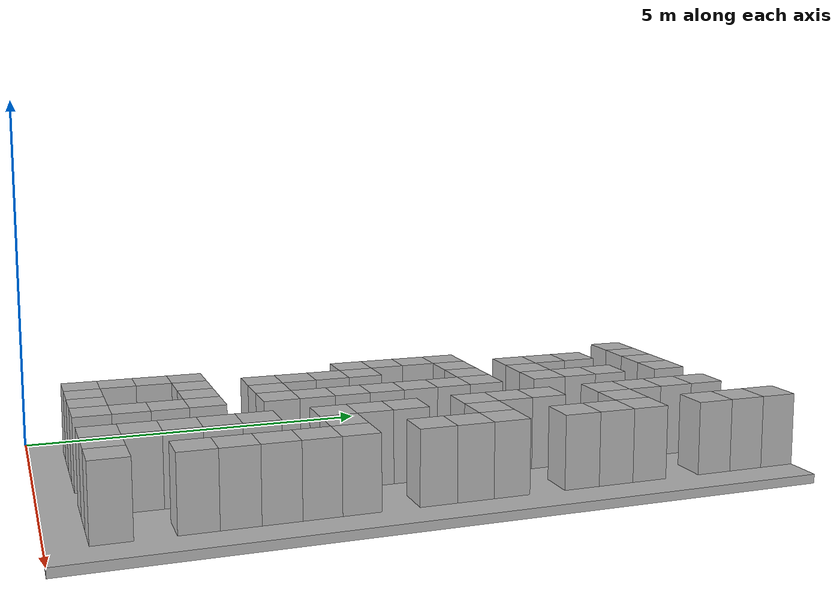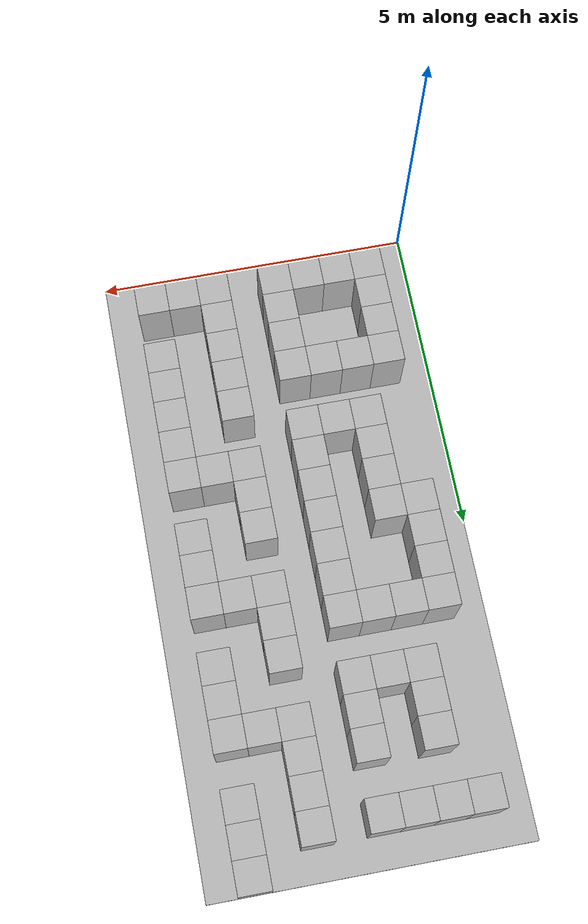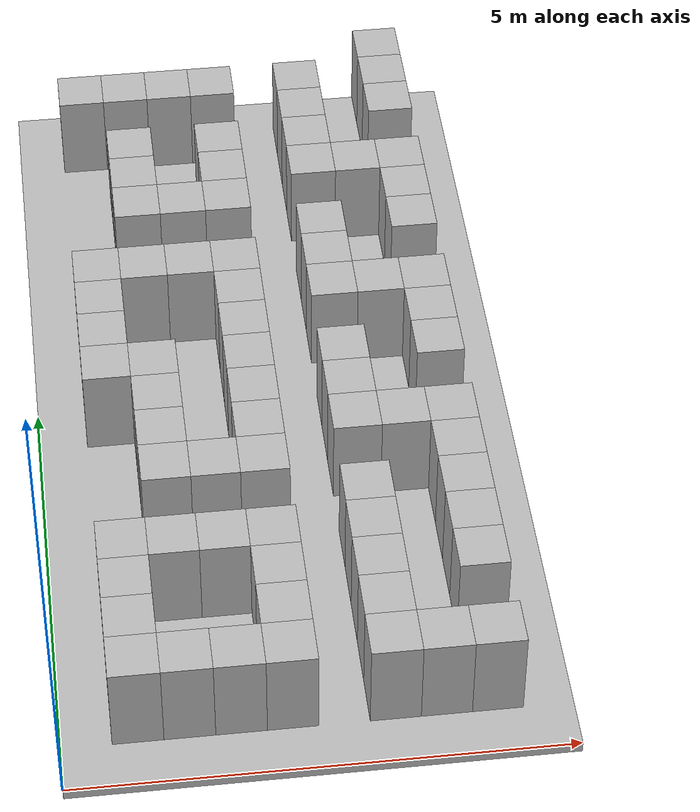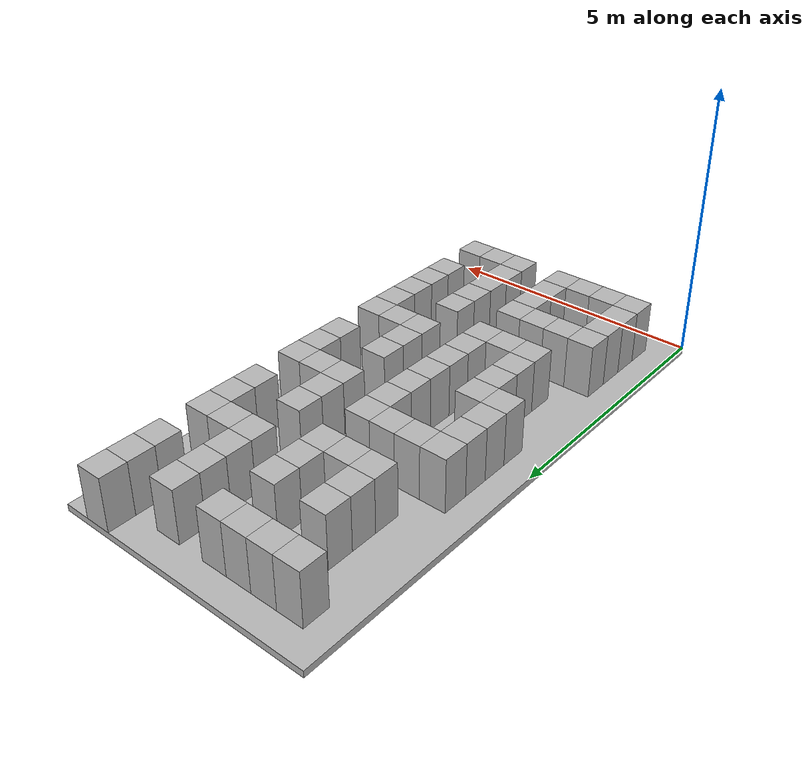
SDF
<sdf version="1.5">
  <model name="map">
    <static>1</static>
    <link name="map">
      <collision name="floor">
        <pose>2.5 5.0 -0.0625 0 0 0</pose>
        <geometry>
          <box>
            <size>5.0 10.0 0.125</size>
          </box>
        </geometry>
      </collision>
      <visual name="floor">
        <pose>2.5 5.0 -0.0625 0 0 0</pose>
        <geometry>
          <box>
            <size>5.0 10.0 0.125</size>
          </box>
        </geometry>
      </visual>
      <collision name="box_1_1">
        <pose>0.75 0.75 0.5 0 0 0</pose>
        <geometry>
          <box>
            <size>0.5 0.5 1.0</size>
          </box>
        </geometry>
      </collision>
      <visual name="box_1_1">
        <pose>0.75 0.75 0.5 0 0 0</pose>
        <geometry>
          <box>
            <size>0.5 0.5 1.0</size>
          </box>
        </geometry>
      </visual>
      <collision name="box_1_2">
        <pose>0.75 1.25 0.5 0 0 0</pose>
        <geometry>
          <box>
            <size>0.5 0.5 1.0</size>
          </box>
        </geometry>
      </collision>
      <visual name="box_1_2">
        <pose>0.75 1.25 0.5 0 0 0</pose>
        <geometry>
          <box>
            <size>0.5 0.5 1.0</size>
          </box>
        </geometry>
      </visual>
      <collision name="box_1_3">
        <pose>0.75 1.75 0.5 0 0 0</pose>
        <geometry>
          <box>
            <size>0.5 0.5 1.0</size>
          </box>
        </geometry>
      </collision>
      <visual name="box_1_3">
        <pose>0.75 1.75 0.5 0 0 0</pose>
        <geometry>
          <box>
            <size>0.5 0.5 1.0</size>
          </box>
        </geometry>
      </visual>
      <collision name="box_1_4">
        <pose>0.75 2.25 0.5 0 0 0</pose>
        <geometry>
          <box>
            <size>0.5 0.5 1.0</size>
          </box>
        </geometry>
      </collision>
      <visual name="box_1_4">
        <pose>0.75 2.25 0.5 0 0 0</pose>
        <geometry>
          <box>
            <size>0.5 0.5 1.0</size>
          </box>
        </geometry>
      </visual>
      <collision name="box_1_9">
        <pose>0.75 4.75 0.5 0 0 0</pose>
        <geometry>
          <box>
            <size>0.5 0.5 1.0</size>
          </box>
        </geometry>
      </collision>
      <visual name="box_1_9">
        <pose>0.75 4.75 0.5 0 0 0</pose>
        <geometry>
          <box>
            <size>0.5 0.5 1.0</size>
          </box>
        </geometry>
      </visual>
      <collision name="box_1_10">
        <pose>0.75 5.25 0.5 0 0 0</pose>
        <geometry>
          <box>
            <size>0.5 0.5 1.0</size>
          </box>
        </geometry>
      </collision>
      <visual name="box_1_10">
        <pose>0.75 5.25 0.5 0 0 0</pose>
        <geometry>
          <box>
            <size>0.5 0.5 1.0</size>
          </box>
        </geometry>
      </visual>
      <collision name="box_1_11">
        <pose>0.75 5.75 0.5 0 0 0</pose>
        <geometry>
          <box>
            <size>0.5 0.5 1.0</size>
          </box>
        </geometry>
      </collision>
      <visual name="box_1_11">
        <pose>0.75 5.75 0.5 0 0 0</pose>
        <geometry>
          <box>
            <size>0.5 0.5 1.0</size>
          </box>
        </geometry>
      </visual>
      <collision name="box_1_12">
        <pose>0.75 6.25 0.5 0 0 0</pose>
        <geometry>
          <box>
            <size>0.5 0.5 1.0</size>
          </box>
        </geometry>
      </collision>
      <visual name="box_1_12">
        <pose>0.75 6.25 0.5 0 0 0</pose>
        <geometry>
          <box>
            <size>0.5 0.5 1.0</size>
          </box>
        </geometry>
      </visual>
      <collision name="box_1_18">
        <pose>0.75 9.25 0.5 0 0 0</pose>
        <geometry>
          <box>
            <size>0.5 0.5 1.0</size>
          </box>
        </geometry>
      </collision>
      <visual name="box_1_18">
        <pose>0.75 9.25 0.5 0 0 0</pose>
        <geometry>
          <box>
            <size>0.5 0.5 1.0</size>
          </box>
        </geometry>
      </visual>
      <collision name="box_2_1">
        <pose>1.25 0.75 0.5 0 0 0</pose>
        <geometry>
          <box>
            <size>0.5 0.5 1.0</size>
          </box>
        </geometry>
      </collision>
      <visual name="box_2_1">
        <pose>1.25 0.75 0.5 0 0 0</pose>
        <geometry>
          <box>
            <size>0.5 0.5 1.0</size>
          </box>
        </geometry>
      </visual>
      <collision name="box_2_4">
        <pose>1.25 2.25 0.5 0 0 0</pose>
        <geometry>
          <box>
            <size>0.5 0.5 1.0</size>
          </box>
        </geometry>
      </collision>
      <visual name="box_2_4">
        <pose>1.25 2.25 0.5 0 0 0</pose>
        <geometry>
          <box>
            <size>0.5 0.5 1.0</size>
          </box>
        </geometry>
      </visual>
      <collision name="box_2_6">
        <pose>1.25 3.25 0.5 0 0 0</pose>
        <geometry>
          <box>
            <size>0.5 0.5 1.0</size>
          </box>
        </geometry>
      </collision>
      <visual name="box_2_6">
        <pose>1.25 3.25 0.5 0 0 0</pose>
        <geometry>
          <box>
            <size>0.5 0.5 1.0</size>
          </box>
        </geometry>
      </visual>
      <collision name="box_2_7">
        <pose>1.25 3.75 0.5 0 0 0</pose>
        <geometry>
          <box>
            <size>0.5 0.5 1.0</size>
          </box>
        </geometry>
      </collision>
      <visual name="box_2_7">
        <pose>1.25 3.75 0.5 0 0 0</pose>
        <geometry>
          <box>
            <size>0.5 0.5 1.0</size>
          </box>
        </geometry>
      </visual>
      <collision name="box_2_8">
        <pose>1.25 4.25 0.5 0 0 0</pose>
        <geometry>
          <box>
            <size>0.5 0.5 1.0</size>
          </box>
        </geometry>
      </collision>
      <visual name="box_2_8">
        <pose>1.25 4.25 0.5 0 0 0</pose>
        <geometry>
          <box>
            <size>0.5 0.5 1.0</size>
          </box>
        </geometry>
      </visual>
      <collision name="box_2_9">
        <pose>1.25 4.75 0.5 0 0 0</pose>
        <geometry>
          <box>
            <size>0.5 0.5 1.0</size>
          </box>
        </geometry>
      </collision>
      <visual name="box_2_9">
        <pose>1.25 4.75 0.5 0 0 0</pose>
        <geometry>
          <box>
            <size>0.5 0.5 1.0</size>
          </box>
        </geometry>
      </visual>
      <collision name="box_2_12">
        <pose>1.25 6.25 0.5 0 0 0</pose>
        <geometry>
          <box>
            <size>0.5 0.5 1.0</size>
          </box>
        </geometry>
      </collision>
      <visual name="box_2_12">
        <pose>1.25 6.25 0.5 0 0 0</pose>
        <geometry>
          <box>
            <size>0.5 0.5 1.0</size>
          </box>
        </geometry>
      </visual>
      <collision name="box_2_14">
        <pose>1.25 7.25 0.5 0 0 0</pose>
        <geometry>
          <box>
            <size>0.5 0.5 1.0</size>
          </box>
        </geometry>
      </collision>
      <visual name="box_2_14">
        <pose>1.25 7.25 0.5 0 0 0</pose>
        <geometry>
          <box>
            <size>0.5 0.5 1.0</size>
          </box>
        </geometry>
      </visual>
      <collision name="box_2_15">
        <pose>1.25 7.75 0.5 0 0 0</pose>
        <geometry>
          <box>
            <size>0.5 0.5 1.0</size>
          </box>
        </geometry>
      </collision>
      <visual name="box_2_15">
        <pose>1.25 7.75 0.5 0 0 0</pose>
        <geometry>
          <box>
            <size>0.5 0.5 1.0</size>
          </box>
        </geometry>
      </visual>
      <collision name="box_2_16">
        <pose>1.25 8.25 0.5 0 0 0</pose>
        <geometry>
          <box>
            <size>0.5 0.5 1.0</size>
          </box>
        </geometry>
      </collision>
      <visual name="box_2_16">
        <pose>1.25 8.25 0.5 0 0 0</pose>
        <geometry>
          <box>
            <size>0.5 0.5 1.0</size>
          </box>
        </geometry>
      </visual>
      <collision name="box_2_18">
        <pose>1.25 9.25 0.5 0 0 0</pose>
        <geometry>
          <box>
            <size>0.5 0.5 1.0</size>
          </box>
        </geometry>
      </collision>
      <visual name="box_2_18">
        <pose>1.25 9.25 0.5 0 0 0</pose>
        <geometry>
          <box>
            <size>0.5 0.5 1.0</size>
          </box>
        </geometry>
      </visual>
      <collision name="box_3_1">
        <pose>1.75 0.75 0.5 0 0 0</pose>
        <geometry>
          <box>
            <size>0.5 0.5 1.0</size>
          </box>
        </geometry>
      </collision>
      <visual name="box_3_1">
        <pose>1.75 0.75 0.5 0 0 0</pose>
        <geometry>
          <box>
            <size>0.5 0.5 1.0</size>
          </box>
        </geometry>
      </visual>
      <collision name="box_3_4">
        <pose>1.75 2.25 0.5 0 0 0</pose>
        <geometry>
          <box>
            <size>0.5 0.5 1.0</size>
          </box>
        </geometry>
      </collision>
      <visual name="box_3_4">
        <pose>1.75 2.25 0.5 0 0 0</pose>
        <geometry>
          <box>
            <size>0.5 0.5 1.0</size>
          </box>
        </geometry>
      </visual>
      <collision name="box_3_6">
        <pose>1.75 3.25 0.5 0 0 0</pose>
        <geometry>
          <box>
            <size>0.5 0.5 1.0</size>
          </box>
        </geometry>
      </collision>
      <visual name="box_3_6">
        <pose>1.75 3.25 0.5 0 0 0</pose>
        <geometry>
          <box>
            <size>0.5 0.5 1.0</size>
          </box>
        </geometry>
      </visual>
      <collision name="box_3_12">
        <pose>1.75 6.25 0.5 0 0 0</pose>
        <geometry>
          <box>
            <size>0.5 0.5 1.0</size>
          </box>
        </geometry>
      </collision>
      <visual name="box_3_12">
        <pose>1.75 6.25 0.5 0 0 0</pose>
        <geometry>
          <box>
            <size>0.5 0.5 1.0</size>
          </box>
        </geometry>
      </visual>
      <collision name="box_3_14">
        <pose>1.75 7.25 0.5 0 0 0</pose>
        <geometry>
          <box>
            <size>0.5 0.5 1.0</size>
          </box>
        </geometry>
      </collision>
      <visual name="box_3_14">
        <pose>1.75 7.25 0.5 0 0 0</pose>
        <geometry>
          <box>
            <size>0.5 0.5 1.0</size>
          </box>
        </geometry>
      </visual>
      <collision name="box_3_18">
        <pose>1.75 9.25 0.5 0 0 0</pose>
        <geometry>
          <box>
            <size>0.5 0.5 1.0</size>
          </box>
        </geometry>
      </collision>
      <visual name="box_3_18">
        <pose>1.75 9.25 0.5 0 0 0</pose>
        <geometry>
          <box>
            <size>0.5 0.5 1.0</size>
          </box>
        </geometry>
      </visual>
      <collision name="box_4_1">
        <pose>2.25 0.75 0.5 0 0 0</pose>
        <geometry>
          <box>
            <size>0.5 0.5 1.0</size>
          </box>
        </geometry>
      </collision>
      <visual name="box_4_1">
        <pose>2.25 0.75 0.5 0 0 0</pose>
        <geometry>
          <box>
            <size>0.5 0.5 1.0</size>
          </box>
        </geometry>
      </visual>
      <collision name="box_4_2">
        <pose>2.25 1.25 0.5 0 0 0</pose>
        <geometry>
          <box>
            <size>0.5 0.5 1.0</size>
          </box>
        </geometry>
      </collision>
      <visual name="box_4_2">
        <pose>2.25 1.25 0.5 0 0 0</pose>
        <geometry>
          <box>
            <size>0.5 0.5 1.0</size>
          </box>
        </geometry>
      </visual>
      <collision name="box_4_3">
        <pose>2.25 1.75 0.5 0 0 0</pose>
        <geometry>
          <box>
            <size>0.5 0.5 1.0</size>
          </box>
        </geometry>
      </collision>
      <visual name="box_4_3">
        <pose>2.25 1.75 0.5 0 0 0</pose>
        <geometry>
          <box>
            <size>0.5 0.5 1.0</size>
          </box>
        </geometry>
      </visual>
      <collision name="box_4_4">
        <pose>2.25 2.25 0.5 0 0 0</pose>
        <geometry>
          <box>
            <size>0.5 0.5 1.0</size>
          </box>
        </geometry>
      </collision>
      <visual name="box_4_4">
        <pose>2.25 2.25 0.5 0 0 0</pose>
        <geometry>
          <box>
            <size>0.5 0.5 1.0</size>
          </box>
        </geometry>
      </visual>
      <collision name="box_4_6">
        <pose>2.25 3.25 0.5 0 0 0</pose>
        <geometry>
          <box>
            <size>0.5 0.5 1.0</size>
          </box>
        </geometry>
      </collision>
      <visual name="box_4_6">
        <pose>2.25 3.25 0.5 0 0 0</pose>
        <geometry>
          <box>
            <size>0.5 0.5 1.0</size>
          </box>
        </geometry>
      </visual>
      <collision name="box_4_7">
        <pose>2.25 3.75 0.5 0 0 0</pose>
        <geometry>
          <box>
            <size>0.5 0.5 1.0</size>
          </box>
        </geometry>
      </collision>
      <visual name="box_4_7">
        <pose>2.25 3.75 0.5 0 0 0</pose>
        <geometry>
          <box>
            <size>0.5 0.5 1.0</size>
          </box>
        </geometry>
      </visual>
      <collision name="box_4_8">
        <pose>2.25 4.25 0.5 0 0 0</pose>
        <geometry>
          <box>
            <size>0.5 0.5 1.0</size>
          </box>
        </geometry>
      </collision>
      <visual name="box_4_8">
        <pose>2.25 4.25 0.5 0 0 0</pose>
        <geometry>
          <box>
            <size>0.5 0.5 1.0</size>
          </box>
        </geometry>
      </visual>
      <collision name="box_4_9">
        <pose>2.25 4.75 0.5 0 0 0</pose>
        <geometry>
          <box>
            <size>0.5 0.5 1.0</size>
          </box>
        </geometry>
      </collision>
      <visual name="box_4_9">
        <pose>2.25 4.75 0.5 0 0 0</pose>
        <geometry>
          <box>
            <size>0.5 0.5 1.0</size>
          </box>
        </geometry>
      </visual>
      <collision name="box_4_10">
        <pose>2.25 5.25 0.5 0 0 0</pose>
        <geometry>
          <box>
            <size>0.5 0.5 1.0</size>
          </box>
        </geometry>
      </collision>
      <visual name="box_4_10">
        <pose>2.25 5.25 0.5 0 0 0</pose>
        <geometry>
          <box>
            <size>0.5 0.5 1.0</size>
          </box>
        </geometry>
      </visual>
      <collision name="box_4_11">
        <pose>2.25 5.75 0.5 0 0 0</pose>
        <geometry>
          <box>
            <size>0.5 0.5 1.0</size>
          </box>
        </geometry>
      </collision>
      <visual name="box_4_11">
        <pose>2.25 5.75 0.5 0 0 0</pose>
        <geometry>
          <box>
            <size>0.5 0.5 1.0</size>
          </box>
        </geometry>
      </visual>
      <collision name="box_4_12">
        <pose>2.25 6.25 0.5 0 0 0</pose>
        <geometry>
          <box>
            <size>0.5 0.5 1.0</size>
          </box>
        </geometry>
      </collision>
      <visual name="box_4_12">
        <pose>2.25 6.25 0.5 0 0 0</pose>
        <geometry>
          <box>
            <size>0.5 0.5 1.0</size>
          </box>
        </geometry>
      </visual>
      <collision name="box_4_14">
        <pose>2.25 7.25 0.5 0 0 0</pose>
        <geometry>
          <box>
            <size>0.5 0.5 1.0</size>
          </box>
        </geometry>
      </collision>
      <visual name="box_4_14">
        <pose>2.25 7.25 0.5 0 0 0</pose>
        <geometry>
          <box>
            <size>0.5 0.5 1.0</size>
          </box>
        </geometry>
      </visual>
      <collision name="box_4_15">
        <pose>2.25 7.75 0.5 0 0 0</pose>
        <geometry>
          <box>
            <size>0.5 0.5 1.0</size>
          </box>
        </geometry>
      </collision>
      <visual name="box_4_15">
        <pose>2.25 7.75 0.5 0 0 0</pose>
        <geometry>
          <box>
            <size>0.5 0.5 1.0</size>
          </box>
        </geometry>
      </visual>
      <collision name="box_4_16">
        <pose>2.25 8.25 0.5 0 0 0</pose>
        <geometry>
          <box>
            <size>0.5 0.5 1.0</size>
          </box>
        </geometry>
      </collision>
      <visual name="box_4_16">
        <pose>2.25 8.25 0.5 0 0 0</pose>
        <geometry>
          <box>
            <size>0.5 0.5 1.0</size>
          </box>
        </geometry>
      </visual>
      <collision name="box_4_18">
        <pose>2.25 9.25 0.5 0 0 0</pose>
        <geometry>
          <box>
            <size>0.5 0.5 1.0</size>
          </box>
        </geometry>
      </collision>
      <visual name="box_4_18">
        <pose>2.25 9.25 0.5 0 0 0</pose>
        <geometry>
          <box>
            <size>0.5 0.5 1.0</size>
          </box>
        </geometry>
      </visual>
      <collision name="box_6_1">
        <pose>3.25 0.75 0.5 0 0 0</pose>
        <geometry>
          <box>
            <size>0.5 0.5 1.0</size>
          </box>
        </geometry>
      </collision>
      <visual name="box_6_1">
        <pose>3.25 0.75 0.5 0 0 0</pose>
        <geometry>
          <box>
            <size>0.5 0.5 1.0</size>
          </box>
        </geometry>
      </visual>
      <collision name="box_6_2">
        <pose>3.25 1.25 0.5 0 0 0</pose>
        <geometry>
          <box>
            <size>0.5 0.5 1.0</size>
          </box>
        </geometry>
      </collision>
      <visual name="box_6_2">
        <pose>3.25 1.25 0.5 0 0 0</pose>
        <geometry>
          <box>
            <size>0.5 0.5 1.0</size>
          </box>
        </geometry>
      </visual>
      <collision name="box_6_3">
        <pose>3.25 1.75 0.5 0 0 0</pose>
        <geometry>
          <box>
            <size>0.5 0.5 1.0</size>
          </box>
        </geometry>
      </collision>
      <visual name="box_6_3">
        <pose>3.25 1.75 0.5 0 0 0</pose>
        <geometry>
          <box>
            <size>0.5 0.5 1.0</size>
          </box>
        </geometry>
      </visual>
      <collision name="box_6_4">
        <pose>3.25 2.25 0.5 0 0 0</pose>
        <geometry>
          <box>
            <size>0.5 0.5 1.0</size>
          </box>
        </geometry>
      </collision>
      <visual name="box_6_4">
        <pose>3.25 2.25 0.5 0 0 0</pose>
        <geometry>
          <box>
            <size>0.5 0.5 1.0</size>
          </box>
        </geometry>
      </visual>
      <collision name="box_6_5">
        <pose>3.25 2.75 0.5 0 0 0</pose>
        <geometry>
          <box>
            <size>0.5 0.5 1.0</size>
          </box>
        </geometry>
      </collision>
      <visual name="box_6_5">
        <pose>3.25 2.75 0.5 0 0 0</pose>
        <geometry>
          <box>
            <size>0.5 0.5 1.0</size>
          </box>
        </geometry>
      </visual>
      <collision name="box_6_7">
        <pose>3.25 3.75 0.5 0 0 0</pose>
        <geometry>
          <box>
            <size>0.5 0.5 1.0</size>
          </box>
        </geometry>
      </collision>
      <visual name="box_6_7">
        <pose>3.25 3.75 0.5 0 0 0</pose>
        <geometry>
          <box>
            <size>0.5 0.5 1.0</size>
          </box>
        </geometry>
      </visual>
      <collision name="box_6_8">
        <pose>3.25 4.25 0.5 0 0 0</pose>
        <geometry>
          <box>
            <size>0.5 0.5 1.0</size>
          </box>
        </geometry>
      </collision>
      <visual name="box_6_8">
        <pose>3.25 4.25 0.5 0 0 0</pose>
        <geometry>
          <box>
            <size>0.5 0.5 1.0</size>
          </box>
        </geometry>
      </visual>
      <collision name="box_6_9">
        <pose>3.25 4.75 0.5 0 0 0</pose>
        <geometry>
          <box>
            <size>0.5 0.5 1.0</size>
          </box>
        </geometry>
      </collision>
      <visual name="box_6_9">
        <pose>3.25 4.75 0.5 0 0 0</pose>
        <geometry>
          <box>
            <size>0.5 0.5 1.0</size>
          </box>
        </geometry>
      </visual>
      <collision name="box_6_11">
        <pose>3.25 5.75 0.5 0 0 0</pose>
        <geometry>
          <box>
            <size>0.5 0.5 1.0</size>
          </box>
        </geometry>
      </collision>
      <visual name="box_6_11">
        <pose>3.25 5.75 0.5 0 0 0</pose>
        <geometry>
          <box>
            <size>0.5 0.5 1.0</size>
          </box>
        </geometry>
      </visual>
      <collision name="box_6_12">
        <pose>3.25 6.25 0.5 0 0 0</pose>
        <geometry>
          <box>
            <size>0.5 0.5 1.0</size>
          </box>
        </geometry>
      </collision>
      <visual name="box_6_12">
        <pose>3.25 6.25 0.5 0 0 0</pose>
        <geometry>
          <box>
            <size>0.5 0.5 1.0</size>
          </box>
        </geometry>
      </visual>
      <collision name="box_6_13">
        <pose>3.25 6.75 0.5 0 0 0</pose>
        <geometry>
          <box>
            <size>0.5 0.5 1.0</size>
          </box>
        </geometry>
      </collision>
      <visual name="box_6_13">
        <pose>3.25 6.75 0.5 0 0 0</pose>
        <geometry>
          <box>
            <size>0.5 0.5 1.0</size>
          </box>
        </geometry>
      </visual>
      <collision name="box_6_15">
        <pose>3.25 7.75 0.5 0 0 0</pose>
        <geometry>
          <box>
            <size>0.5 0.5 1.0</size>
          </box>
        </geometry>
      </collision>
      <visual name="box_6_15">
        <pose>3.25 7.75 0.5 0 0 0</pose>
        <geometry>
          <box>
            <size>0.5 0.5 1.0</size>
          </box>
        </geometry>
      </visual>
      <collision name="box_6_16">
        <pose>3.25 8.25 0.5 0 0 0</pose>
        <geometry>
          <box>
            <size>0.5 0.5 1.0</size>
          </box>
        </geometry>
      </collision>
      <visual name="box_6_16">
        <pose>3.25 8.25 0.5 0 0 0</pose>
        <geometry>
          <box>
            <size>0.5 0.5 1.0</size>
          </box>
        </geometry>
      </visual>
      <collision name="box_6_17">
        <pose>3.25 8.75 0.5 0 0 0</pose>
        <geometry>
          <box>
            <size>0.5 0.5 1.0</size>
          </box>
        </geometry>
      </collision>
      <visual name="box_6_17">
        <pose>3.25 8.75 0.5 0 0 0</pose>
        <geometry>
          <box>
            <size>0.5 0.5 1.0</size>
          </box>
        </geometry>
      </visual>
      <collision name="box_6_18">
        <pose>3.25 9.25 0.5 0 0 0</pose>
        <geometry>
          <box>
            <size>0.5 0.5 1.0</size>
          </box>
        </geometry>
      </collision>
      <visual name="box_6_18">
        <pose>3.25 9.25 0.5 0 0 0</pose>
        <geometry>
          <box>
            <size>0.5 0.5 1.0</size>
          </box>
        </geometry>
      </visual>
      <collision name="box_7_1">
        <pose>3.75 0.75 0.5 0 0 0</pose>
        <geometry>
          <box>
            <size>0.5 0.5 1.0</size>
          </box>
        </geometry>
      </collision>
      <visual name="box_7_1">
        <pose>3.75 0.75 0.5 0 0 0</pose>
        <geometry>
          <box>
            <size>0.5 0.5 1.0</size>
          </box>
        </geometry>
      </visual>
      <collision name="box_7_7">
        <pose>3.75 3.75 0.5 0 0 0</pose>
        <geometry>
          <box>
            <size>0.5 0.5 1.0</size>
          </box>
        </geometry>
      </collision>
      <visual name="box_7_7">
        <pose>3.75 3.75 0.5 0 0 0</pose>
        <geometry>
          <box>
            <size>0.5 0.5 1.0</size>
          </box>
        </geometry>
      </visual>
      <collision name="box_7_11">
        <pose>3.75 5.75 0.5 0 0 0</pose>
        <geometry>
          <box>
            <size>0.5 0.5 1.0</size>
          </box>
        </geometry>
      </collision>
      <visual name="box_7_11">
        <pose>3.75 5.75 0.5 0 0 0</pose>
        <geometry>
          <box>
            <size>0.5 0.5 1.0</size>
          </box>
        </geometry>
      </visual>
      <collision name="box_7_15">
        <pose>3.75 7.75 0.5 0 0 0</pose>
        <geometry>
          <box>
            <size>0.5 0.5 1.0</size>
          </box>
        </geometry>
      </collision>
      <visual name="box_7_15">
        <pose>3.75 7.75 0.5 0 0 0</pose>
        <geometry>
          <box>
            <size>0.5 0.5 1.0</size>
          </box>
        </geometry>
      </visual>
      <collision name="box_8_1">
        <pose>4.25 0.75 0.5 0 0 0</pose>
        <geometry>
          <box>
            <size>0.5 0.5 1.0</size>
          </box>
        </geometry>
      </collision>
      <visual name="box_8_1">
        <pose>4.25 0.75 0.5 0 0 0</pose>
        <geometry>
          <box>
            <size>0.5 0.5 1.0</size>
          </box>
        </geometry>
      </visual>
      <collision name="box_8_3">
        <pose>4.25 1.75 0.5 0 0 0</pose>
        <geometry>
          <box>
            <size>0.5 0.5 1.0</size>
          </box>
        </geometry>
      </collision>
      <visual name="box_8_3">
        <pose>4.25 1.75 0.5 0 0 0</pose>
        <geometry>
          <box>
            <size>0.5 0.5 1.0</size>
          </box>
        </geometry>
      </visual>
      <collision name="box_8_4">
        <pose>4.25 2.25 0.5 0 0 0</pose>
        <geometry>
          <box>
            <size>0.5 0.5 1.0</size>
          </box>
        </geometry>
      </collision>
      <visual name="box_8_4">
        <pose>4.25 2.25 0.5 0 0 0</pose>
        <geometry>
          <box>
            <size>0.5 0.5 1.0</size>
          </box>
        </geometry>
      </visual>
      <collision name="box_8_5">
        <pose>4.25 2.75 0.5 0 0 0</pose>
        <geometry>
          <box>
            <size>0.5 0.5 1.0</size>
          </box>
        </geometry>
      </collision>
      <visual name="box_8_5">
        <pose>4.25 2.75 0.5 0 0 0</pose>
        <geometry>
          <box>
            <size>0.5 0.5 1.0</size>
          </box>
        </geometry>
      </visual>
      <collision name="box_8_6">
        <pose>4.25 3.25 0.5 0 0 0</pose>
        <geometry>
          <box>
            <size>0.5 0.5 1.0</size>
          </box>
        </geometry>
      </collision>
      <visual name="box_8_6">
        <pose>4.25 3.25 0.5 0 0 0</pose>
        <geometry>
          <box>
            <size>0.5 0.5 1.0</size>
          </box>
        </geometry>
      </visual>
      <collision name="box_8_7">
        <pose>4.25 3.75 0.5 0 0 0</pose>
        <geometry>
          <box>
            <size>0.5 0.5 1.0</size>
          </box>
        </geometry>
      </collision>
      <visual name="box_8_7">
        <pose>4.25 3.75 0.5 0 0 0</pose>
        <geometry>
          <box>
            <size>0.5 0.5 1.0</size>
          </box>
        </geometry>
      </visual>
      <collision name="box_8_9">
        <pose>4.25 4.75 0.5 0 0 0</pose>
        <geometry>
          <box>
            <size>0.5 0.5 1.0</size>
          </box>
        </geometry>
      </collision>
      <visual name="box_8_9">
        <pose>4.25 4.75 0.5 0 0 0</pose>
        <geometry>
          <box>
            <size>0.5 0.5 1.0</size>
          </box>
        </geometry>
      </visual>
      <collision name="box_8_10">
        <pose>4.25 5.25 0.5 0 0 0</pose>
        <geometry>
          <box>
            <size>0.5 0.5 1.0</size>
          </box>
        </geometry>
      </collision>
      <visual name="box_8_10">
        <pose>4.25 5.25 0.5 0 0 0</pose>
        <geometry>
          <box>
            <size>0.5 0.5 1.0</size>
          </box>
        </geometry>
      </visual>
      <collision name="box_8_11">
        <pose>4.25 5.75 0.5 0 0 0</pose>
        <geometry>
          <box>
            <size>0.5 0.5 1.0</size>
          </box>
        </geometry>
      </collision>
      <visual name="box_8_11">
        <pose>4.25 5.75 0.5 0 0 0</pose>
        <geometry>
          <box>
            <size>0.5 0.5 1.0</size>
          </box>
        </geometry>
      </visual>
      <collision name="box_8_13">
        <pose>4.25 6.75 0.5 0 0 0</pose>
        <geometry>
          <box>
            <size>0.5 0.5 1.0</size>
          </box>
        </geometry>
      </collision>
      <visual name="box_8_13">
        <pose>4.25 6.75 0.5 0 0 0</pose>
        <geometry>
          <box>
            <size>0.5 0.5 1.0</size>
          </box>
        </geometry>
      </visual>
      <collision name="box_8_14">
        <pose>4.25 7.25 0.5 0 0 0</pose>
        <geometry>
          <box>
            <size>0.5 0.5 1.0</size>
          </box>
        </geometry>
      </collision>
      <visual name="box_8_14">
        <pose>4.25 7.25 0.5 0 0 0</pose>
        <geometry>
          <box>
            <size>0.5 0.5 1.0</size>
          </box>
        </geometry>
      </visual>
      <collision name="box_8_15">
        <pose>4.25 7.75 0.5 0 0 0</pose>
        <geometry>
          <box>
            <size>0.5 0.5 1.0</size>
          </box>
        </geometry>
      </collision>
      <visual name="box_8_15">
        <pose>4.25 7.75 0.5 0 0 0</pose>
        <geometry>
          <box>
            <size>0.5 0.5 1.0</size>
          </box>
        </geometry>
      </visual>
      <collision name="box_8_17">
        <pose>4.25 8.75 0.5 0 0 0</pose>
        <geometry>
          <box>
            <size>0.5 0.5 1.0</size>
          </box>
        </geometry>
      </collision>
      <visual name="box_8_17">
        <pose>4.25 8.75 0.5 0 0 0</pose>
        <geometry>
          <box>
            <size>0.5 0.5 1.0</size>
          </box>
        </geometry>
      </visual>
      <collision name="box_8_18">
        <pose>4.25 9.25 0.5 0 0 0</pose>
        <geometry>
          <box>
            <size>0.5 0.5 1.0</size>
          </box>
        </geometry>
      </collision>
      <visual name="box_8_18">
        <pose>4.25 9.25 0.5 0 0 0</pose>
        <geometry>
          <box>
            <size>0.5 0.5 1.0</size>
          </box>
        </geometry>
      </visual>
      <collision name="box_8_19">
        <pose>4.25 9.75 0.5 0 0 0</pose>
        <geometry>
          <box>
            <size>0.5 0.5 1.0</size>
          </box>
        </geometry>
      </collision>
      <visual name="box_8_19">
        <pose>4.25 9.75 0.5 0 0 0</pose>
        <geometry>
          <box>
            <size>0.5 0.5 1.0</size>
          </box>
        </geometry>
      </visual>
    </link>
  </model>
</sdf>
